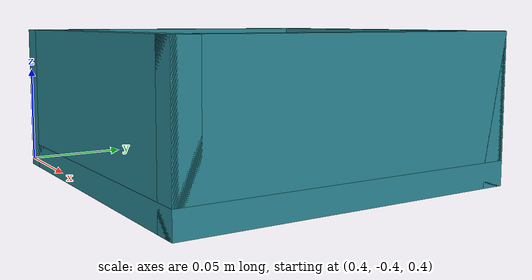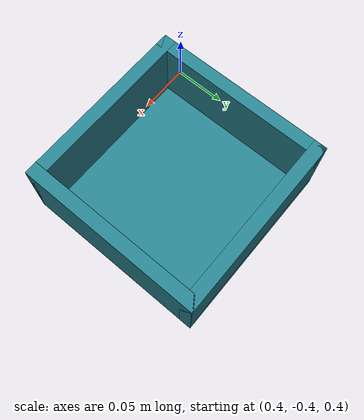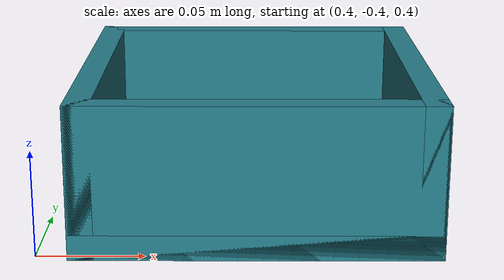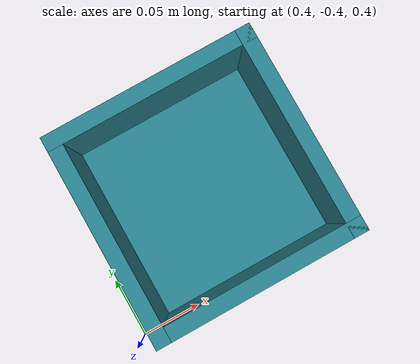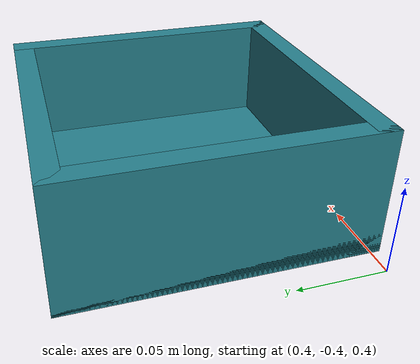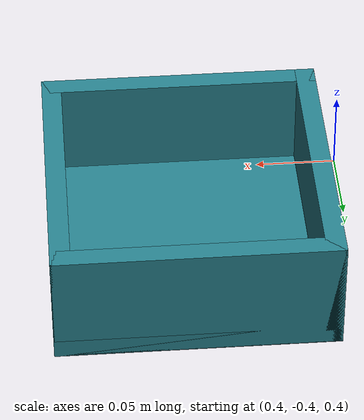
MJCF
<mujoco model="tray">
  <!--
    放置区 / 简化科技核心受体 (placement target)
    一个浅口方盒，能量单元竖直放入其内腔完成"装配"。
    着蓝绿色以区别于红色能量单元，便于视觉区分。
  -->
  <asset>
    <material name="tray_teal" rgba="0.15 0.5 0.55 1" specular="0.2" shininess="0.2"/>
    <material name="tray_slot" rgba="0.08 0.3 0.34 1"/>
  </asset>

  <worldbody>
    <body name="tray" pos="0.5 -0.32 0.40">
      <!-- 底板 -->
      <geom name="tray_base" type="box" pos="0 0 0.006" size="0.085 0.085 0.006"
            material="tray_teal" friction="1.0 0.02 0.001" condim="4"/>
      <!-- 四壁，围出内腔 (内半径约 0.077)，壁高 0.06 -->
      <geom name="tray_wx1" type="box" pos="0.079 0 0.036" size="0.006 0.085 0.036" material="tray_teal"/>
      <geom name="tray_wx2" type="box" pos="-0.079 0 0.036" size="0.006 0.085 0.036" material="tray_teal"/>
      <geom name="tray_wy1" type="box" pos="0 0.079 0.036" size="0.085 0.006 0.036" material="tray_teal"/>
      <geom name="tray_wy2" type="box" pos="0 -0.079 0.036" size="0.085 0.006 0.036" material="tray_teal"/>
      <!-- 内腔中心标记点（供放置目标位姿参考） -->
      <site name="tray_center" pos="0 0 0.012" size="0.01" rgba="0.9 0.9 0.2 0.5" group="4"/>
    </body>
  </worldbody>
</mujoco>
